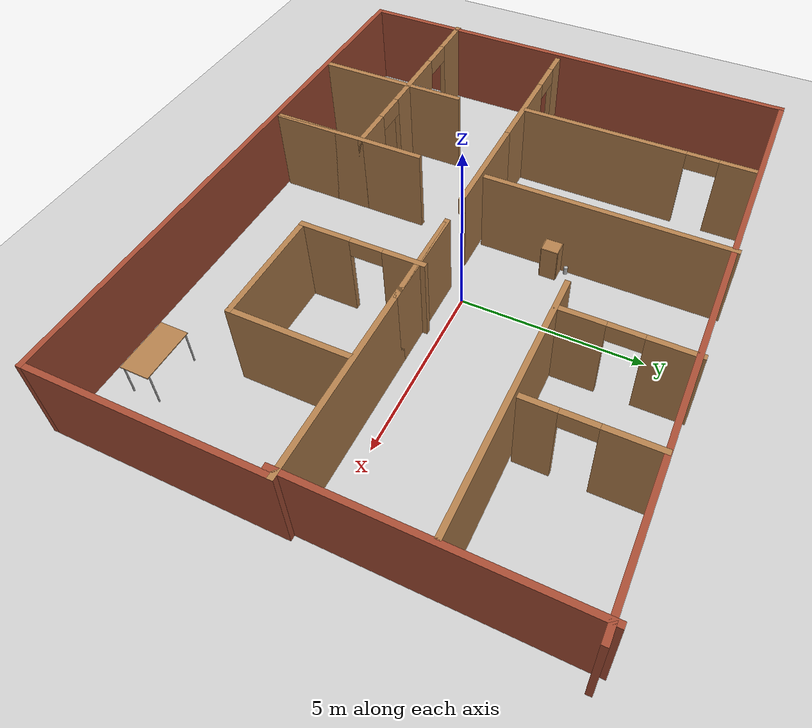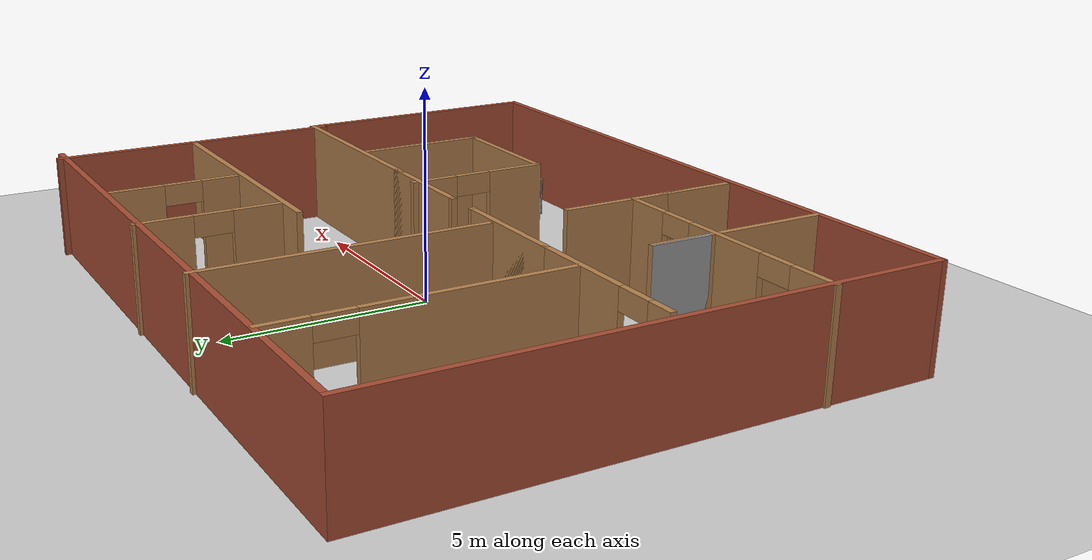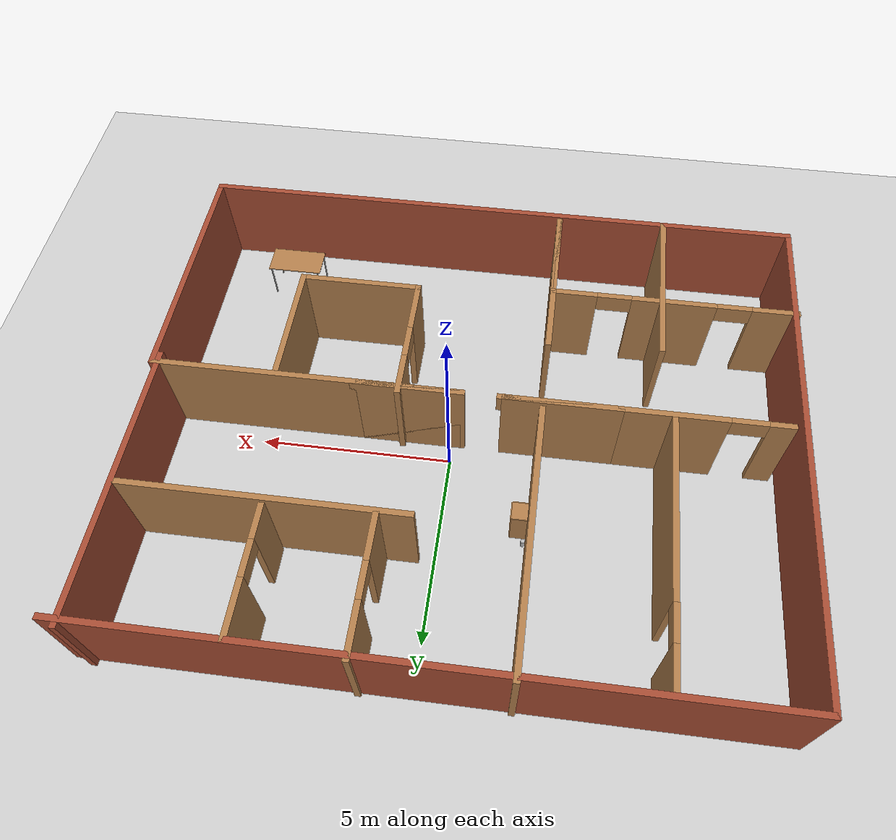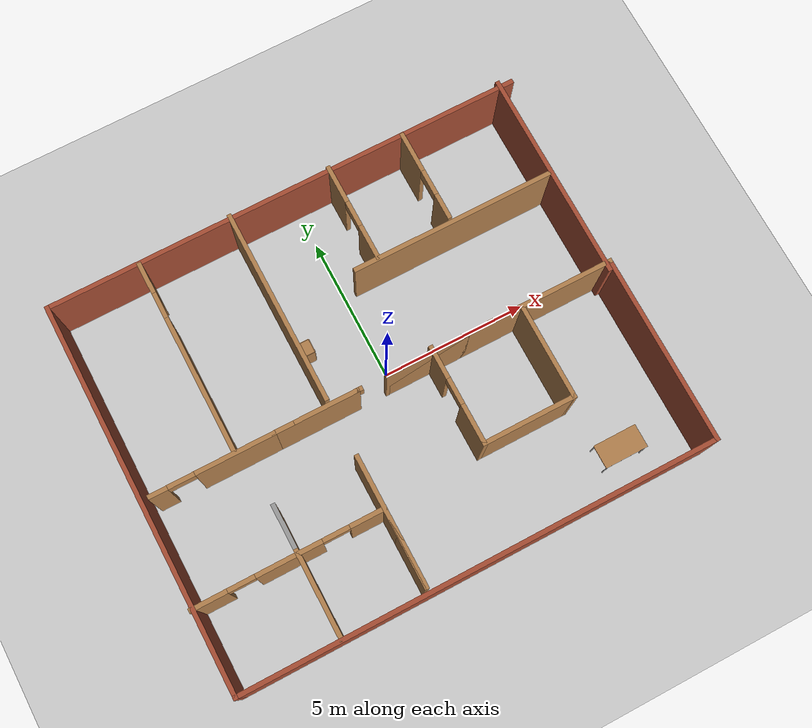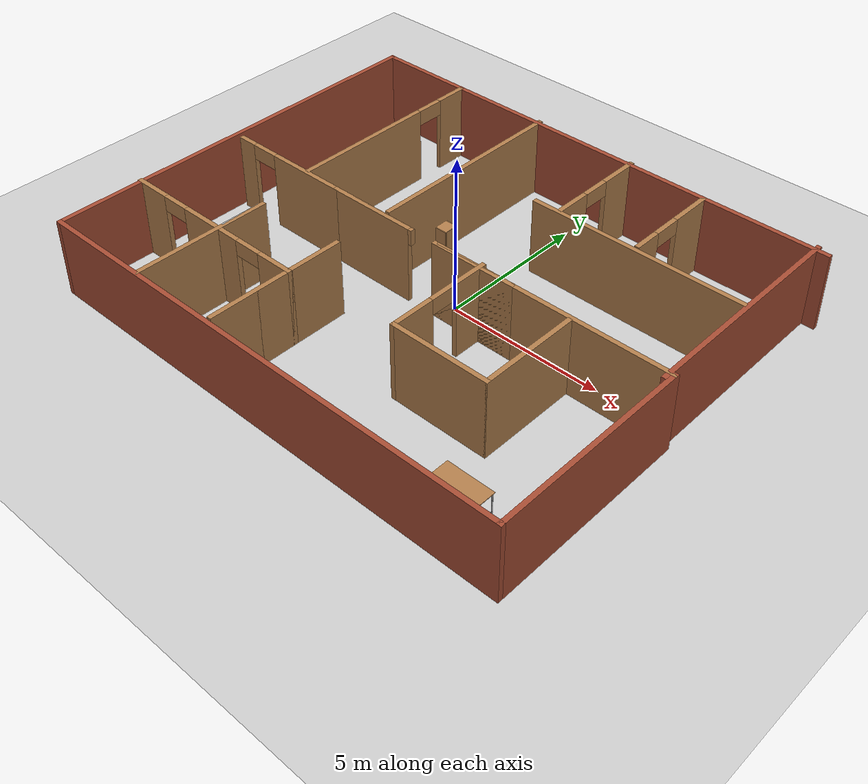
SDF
<sdf version="1.7">
 <world name="default">
  <model name="ground_plane">
   <static>1</static>
   <link name="link">
    <collision name="collision">
     <geometry><plane><normal>0 0 1</normal><size>100 100</size></plane></geometry>
     <surface>
      <contact><collide_bitmask>65535</collide_bitmask></contact>
      <friction><ode><mu>100</mu><mu2>50</mu2></ode></friction>
     </surface>
    </collision>
    <visual name="visual">
     <cast_shadows>0</cast_shadows>
     <geometry><plane><normal>0 0 1</normal><size>100 100</size></plane></geometry>
     <material>
      <script><uri>file://media/materials/scripts/gazebo.material</uri><name>Gazebo/Grey</name></script>
     </material>
    </visual>
   </link>
  </model>
  <model name="floor">
   <pose>-0.392936 -0.273888 0 0 -0 0</pose>
   <link name="Wall_0">
    <pose>-0.450005 -0.269423 0 0 -0 0</pose>
    <visual name="Wall_0_Visual_0">
     <pose>-1.88353 0 1.25 0 -0 0</pose>
     <geometry><box><size>2.98294 0.15 2.5</size></box></geometry>
     <material>
      <script><uri>file://media/materials/scripts/gazebo.material</uri><name>Gazebo/Wood</name></script>
      <ambient>1 1 1 1</ambient>
     </material>
     <meta><layer>0</layer></meta>
    </visual>
    <collision name="Wall_0_Collision_0">
     <geometry><box><size>2.98294 0.15 2.5</size></box></geometry>
     <pose>-1.88353 0 1.25 0 -0 0</pose>
    </collision>
    <visual name="Wall_0_Visual_1">
     <pose>-1.4996 0 1.25 0 -0 0</pose>
     <geometry><box><size>2.21508 0.15 2.5</size></box></geometry>
     <material>
      <script><uri>file://media/materials/scripts/gazebo.material</uri><name>Gazebo/Wood</name></script>
      <ambient>1 1 1 1</ambient>
     </material>
     <meta><layer>0</layer></meta>
    </visual>
    <collision name="Wall_0_Collision_1">
     <geometry><box><size>2.21508 0.15 2.5</size></box></geometry>
     <pose>-1.4996 0 1.25 0 -0 0</pose>
    </collision>
    <visual name="Wall_0_Visual_2">
     <pose>1.94147 0 1.25 0 -0 0</pose>
     <geometry><box><size>2.86706 0.15 2.5</size></box></geometry>
     <material>
      <script><uri>file://media/materials/scripts/gazebo.material</uri><name>Gazebo/Wood</name></script>
      <ambient>1 1 1 1</ambient>
     </material>
     <meta><layer>0</layer></meta>
    </visual>
    <collision name="Wall_0_Collision_2">
     <geometry><box><size>2.86706 0.15 2.5</size></box></geometry>
     <pose>1.94147 0 1.25 0 -0 0</pose>
    </collision>
    <visual name="Wall_0_Visual_3">
     <pose>2.00215 0 1.25 0 -0 0</pose>
     <geometry><box><size>2.7457 0.15 2.5</size></box></geometry>
     <material>
      <script><uri>file://media/materials/scripts/gazebo.material</uri><name>Gazebo/Wood</name></script>
      <ambient>1 1 1 1</ambient>
     </material>
     <meta><layer>0</layer></meta>
    </visual>
    <collision name="Wall_0_Collision_3">
     <geometry><box><size>2.7457 0.15 2.5</size></box></geometry>
     <pose>2.00215 0 1.25 0 -0 0</pose>
    </collision>
    <visual name="Wall_0_Visual_4">
     <pose>-0.33138 0 2.25 0 -0 0</pose>
     <geometry><box><size>0.121367 0.15 0.5</size></box></geometry>
     <material>
      <script><uri>file://media/materials/scripts/gazebo.material</uri><name>Gazebo/Wood</name></script>
      <ambient>1 1 1 1</ambient>
     </material>
     <meta><layer>0</layer></meta>
    </visual>
    <collision name="Wall_0_Collision_4">
     <geometry><box><size>0.121367 0.15 0.5</size></box></geometry>
     <pose>-0.33138 0 2.25 0 -0 0</pose>
    </collision>
    <visual name="Wall_0_Visual_5">
     <pose>-0.33138 0 2.25 0 -0 0</pose>
     <geometry><box><size>0.121367 0.15 0.5</size></box></geometry>
     <material>
      <script><uri>file://media/materials/scripts/gazebo.material</uri><name>Gazebo/Wood</name></script>
      <ambient>1 1 1 1</ambient>
     </material>
     <meta><layer>0</layer></meta>
    </visual>
    <collision name="Wall_0_Collision_5">
     <geometry><box><size>0.121367 0.15 0.5</size></box></geometry>
     <pose>-0.33138 0 2.25 0 -0 0</pose>
    </collision>
   </link>
   <link name="Wall_11">
    <collision name="Wall_11_Collision">
     <geometry><box><size>7.25 0.15 2.5</size></box></geometry>
     <pose>0 0 1.25 0 -0 0</pose>
    </collision>
    <visual name="Wall_11_Visual">
     <pose>0 0 1.25 0 -0 0</pose>
     <geometry><box><size>7.25 0.15 2.5</size></box></geometry>
     <material>
      <script><uri>file://media/materials/scripts/gazebo.material</uri><name>Gazebo/Bricks</name></script>
      <ambient>1 1 1 1</ambient>
     </material>
     <meta><layer>0</layer></meta>
    </visual>
    <pose>7.8083 3.06942 0 0 -0 -1.5708</pose>
   </link>
   <link name="Wall_13">
    <pose>-5.03671 3.13385 0 0 -0 -1.5708</pose>
    <visual name="Wall_13_Visual_0">
     <pose>-2.81756 0 1.25 0 -0 0</pose>
     <geometry><box><size>1.11488 0.15 2.5</size></box></geometry>
     <material>
      <script><uri>file://media/materials/scripts/gazebo.material</uri><name>Gazebo/Wood</name></script>
      <ambient>1 1 1 1</ambient>
     </material>
     <meta><layer>0</layer></meta>
    </visual>
    <collision name="Wall_13_Collision_0">
     <geometry><box><size>1.11488 0.15 2.5</size></box></geometry>
     <pose>-2.81756 0 1.25 0 -0 0</pose>
    </collision>
    <visual name="Wall_13_Visual_1">
     <pose>1.00744 0 1.25 0 -0 0</pose>
     <geometry><box><size>4.73512 0.15 2.5</size></box></geometry>
     <material>
      <script><uri>file://media/materials/scripts/gazebo.material</uri><name>Gazebo/Wood</name></script>
      <ambient>1 1 1 1</ambient>
     </material>
     <meta><layer>0</layer></meta>
    </visual>
    <collision name="Wall_13_Collision_1">
     <geometry><box><size>4.73512 0.15 2.5</size></box></geometry>
     <pose>1.00744 0 1.25 0 -0 0</pose>
    </collision>
    <visual name="Wall_13_Visual_2">
     <pose>-1.81012 0 2.25 0 -0 0</pose>
     <geometry><box><size>0.9 0.15 0.5</size></box></geometry>
     <material>
      <script><uri>file://media/materials/scripts/gazebo.material</uri><name>Gazebo/Wood</name></script>
      <ambient>1 1 1 1</ambient>
     </material>
     <meta><layer>0</layer></meta>
    </visual>
    <collision name="Wall_13_Collision_2">
     <geometry><box><size>0.9 0.15 0.5</size></box></geometry>
     <pose>-1.81012 0 2.25 0 -0 0</pose>
    </collision>
   </link>
   <link name="Wall_15">
    <collision name="Wall_15_Collision">
     <geometry><box><size>6.75 0.15 2.5</size></box></geometry>
     <pose>0 0 1.25 0 -0 0</pose>
    </collision>
    <visual name="Wall_15_Visual">
     <pose>0 0 1.25 0 -0 0</pose>
     <geometry><box><size>6.75 0.15 2.5</size></box></geometry>
     <material>
      <script><uri>file://media/materials/scripts/gazebo.material</uri><name>Gazebo/Wood</name></script>
      <ambient>1 1 1 1</ambient>
     </material>
     <meta><layer>0</layer></meta>
    </visual>
    <pose>-1.85532 3.25622 0 0 -0 -1.5708</pose>
   </link>
   <link name="Wall_17">
    <collision name="Wall_17_Collision">
     <geometry><box><size>7 0.15 2.5</size></box></geometry>
     <pose>0 0 1.25 0 -0 0</pose>
    </collision>
    <visual name="Wall_17_Visual">
     <pose>0 0 1.25 0 -0 0</pose>
     <geometry><box><size>7 0.15 2.5</size></box></geometry>
     <material>
      <script><uri>file://media/materials/scripts/gazebo.material</uri><name>Gazebo/Wood</name></script>
      <ambient>1 1 1 1</ambient>
     </material>
     <meta><layer>0</layer></meta>
    </visual>
    <pose>4.26383 3.1607 0 0 -0 3.14159</pose>
   </link>
   <link name="Wall_19">
    <pose>4.23213 4.91444 0 0 -0 -1.5708</pose>
    <visual name="Wall_19_Visual_0">
     <pose>-0.903532 0 1.25 0 -0 0</pose>
     <geometry><box><size>1.44294 0.15 2.5</size></box></geometry>
     <material>
      <script><uri>file://media/materials/scripts/gazebo.material</uri><name>Gazebo/Wood</name></script>
      <ambient>1 1 1 1</ambient>
     </material>
     <meta><layer>0</layer></meta>
    </visual>
    <collision name="Wall_19_Collision_0">
     <geometry><box><size>1.44294 0.15 2.5</size></box></geometry>
     <pose>-0.903532 0 1.25 0 -0 0</pose>
    </collision>
    <visual name="Wall_19_Visual_1">
     <pose>1.17147 0 1.25 0 -0 0</pose>
     <geometry><box><size>0.907064 0.15 2.5</size></box></geometry>
     <material>
      <script><uri>file://media/materials/scripts/gazebo.material</uri><name>Gazebo/Wood</name></script>
      <ambient>1 1 1 1</ambient>
     </material>
     <meta><layer>0</layer></meta>
    </visual>
    <collision name="Wall_19_Collision_1">
     <geometry><box><size>0.907064 0.15 2.5</size></box></geometry>
     <pose>1.17147 0 1.25 0 -0 0</pose>
    </collision>
    <visual name="Wall_19_Visual_2">
     <pose>0.267936 0 2.25 0 -0 0</pose>
     <geometry><box><size>0.9 0.15 0.5</size></box></geometry>
     <material>
      <script><uri>file://media/materials/scripts/gazebo.material</uri><name>Gazebo/Wood</name></script>
      <ambient>1 1 1 1</ambient>
     </material>
     <meta><layer>0</layer></meta>
    </visual>
    <collision name="Wall_19_Collision_2">
     <geometry><box><size>0.9 0.15 0.5</size></box></geometry>
     <pose>0.267936 0 2.25 0 -0 0</pose>
    </collision>
   </link>
   <link name="Wall_2">
    <pose>-5.8 -0.269423 0 0 -0 3.14159</pose>
    <visual name="Wall_2_Visual_0">
     <pose>-0.77525 0 1.25 0 -0 0</pose>
     <geometry><box><size>2.6995 0.15 2.5</size></box></geometry>
     <material>
      <script><uri>file://media/materials/scripts/gazebo.material</uri><name>Gazebo/Wood</name></script>
      <ambient>1 1 1 1</ambient>
     </material>
     <meta><layer>0</layer></meta>
    </visual>
    <collision name="Wall_2_Collision_0">
     <geometry><box><size>2.6995 0.15 2.5</size></box></geometry>
     <pose>-0.77525 0 1.25 0 -0 0</pose>
    </collision>
    <visual name="Wall_2_Visual_1">
     <pose>1.79975 0 1.25 0 -0 0</pose>
     <geometry><box><size>0.650499 0.15 2.5</size></box></geometry>
     <material>
      <script><uri>file://media/materials/scripts/gazebo.material</uri><name>Gazebo/Wood</name></script>
      <ambient>1 1 1 1</ambient>
     </material>
     <meta><layer>0</layer></meta>
    </visual>
    <collision name="Wall_2_Collision_1">
     <geometry><box><size>0.650499 0.15 2.5</size></box></geometry>
     <pose>1.79975 0 1.25 0 -0 0</pose>
    </collision>
    <visual name="Wall_2_Visual_2">
     <pose>1.0245 0 2.25 0 -0 0</pose>
     <geometry><box><size>0.9 0.15 0.5</size></box></geometry>
     <material>
      <script><uri>file://media/materials/scripts/gazebo.material</uri><name>Gazebo/Wood</name></script>
      <ambient>1 1 1 1</ambient>
     </material>
     <meta><layer>0</layer></meta>
    </visual>
    <collision name="Wall_2_Collision_2">
     <geometry><box><size>0.9 0.15 0.5</size></box></geometry>
     <pose>1.0245 0 2.25 0 -0 0</pose>
    </collision>
   </link>
   <link name="Wall_22">
    <pose>1.63196 4.88122 0 0 -0 -1.5708</pose>
    <visual name="Wall_22_Visual_0">
     <pose>-1.07442 0 1.25 0 -0 0</pose>
     <geometry><box><size>1.35116 0.15 2.5</size></box></geometry>
     <material>
      <script><uri>file://media/materials/scripts/gazebo.material</uri><name>Gazebo/Wood</name></script>
      <ambient>1 1 1 1</ambient>
     </material>
     <meta><layer>0</layer></meta>
    </visual>
    <collision name="Wall_22_Collision_0">
     <geometry><box><size>1.35116 0.15 2.5</size></box></geometry>
     <pose>-1.07442 0 1.25 0 -0 0</pose>
    </collision>
    <visual name="Wall_22_Visual_1">
     <pose>1.12558 0 1.25 0 -0 0</pose>
     <geometry><box><size>1.24883 0.15 2.5</size></box></geometry>
     <material>
      <script><uri>file://media/materials/scripts/gazebo.material</uri><name>Gazebo/Wood</name></script>
      <ambient>1 1 1 1</ambient>
     </material>
     <meta><layer>0</layer></meta>
    </visual>
    <collision name="Wall_22_Collision_1">
     <geometry><box><size>1.24883 0.15 2.5</size></box></geometry>
     <pose>1.12558 0 1.25 0 -0 0</pose>
    </collision>
    <visual name="Wall_22_Visual_2">
     <pose>0.051165 0 2.25 0 -0 0</pose>
     <geometry><box><size>0.9 0.15 0.5</size></box></geometry>
     <material>
      <script><uri>file://media/materials/scripts/gazebo.material</uri><name>Gazebo/Wood</name></script>
      <ambient>1 1 1 1</ambient>
     </material>
     <meta><layer>0</layer></meta>
    </visual>
    <collision name="Wall_22_Collision_2">
     <geometry><box><size>0.9 0.15 0.5</size></box></geometry>
     <pose>0.051165 0 2.25 0 -0 0</pose>
    </collision>
   </link>
   <link name="Wall_24">
    <pose>1.71162 -1.81284 0 0 -0 -1.5708</pose>
    <visual name="Wall_24_Visual_0">
     <pose>-1.16884 0 1.25 0 -0 0</pose>
     <geometry><box><size>1.16231 0.15 2.5</size></box></geometry>
     <material>
      <script><uri>file://media/materials/scripts/gazebo.material</uri><name>Gazebo/Wood</name></script>
      <ambient>1 1 1 1</ambient>
     </material>
     <meta><layer>0</layer></meta>
    </visual>
    <collision name="Wall_24_Collision_0">
     <geometry><box><size>1.16231 0.15 2.5</size></box></geometry>
     <pose>-1.16884 0 1.25 0 -0 0</pose>
    </collision>
    <visual name="Wall_24_Visual_1">
     <pose>1.03116 0 1.25 0 -0 0</pose>
     <geometry><box><size>1.43769 0.15 2.5</size></box></geometry>
     <material>
      <script><uri>file://media/materials/scripts/gazebo.material</uri><name>Gazebo/Wood</name></script>
      <ambient>1 1 1 1</ambient>
     </material>
     <meta><layer>0</layer></meta>
    </visual>
    <collision name="Wall_24_Collision_1">
     <geometry><box><size>1.43769 0.15 2.5</size></box></geometry>
     <pose>1.03116 0 1.25 0 -0 0</pose>
    </collision>
    <visual name="Wall_24_Visual_2">
     <pose>-0.137688 0 2.25 0 -0 0</pose>
     <geometry><box><size>0.9 0.15 0.5</size></box></geometry>
     <material>
      <script><uri>file://media/materials/scripts/gazebo.material</uri><name>Gazebo/Wood</name></script>
      <ambient>1 1 1 1</ambient>
     </material>
     <meta><layer>0</layer></meta>
    </visual>
    <collision name="Wall_24_Collision_2">
     <geometry><box><size>0.9 0.15 0.5</size></box></geometry>
     <pose>-0.137688 0 2.25 0 -0 0</pose>
    </collision>
   </link>
   <link name="Wall_25">
    <collision name="Wall_25_Collision">
     <geometry><box><size>3.25 0.15 2.5</size></box></geometry>
     <pose>0 0 1.25 0 -0 0</pose>
    </collision>
    <visual name="Wall_25_Visual">
     <pose>0 0 1.25 0 -0 0</pose>
     <geometry><box><size>3.25 0.15 2.5</size></box></geometry>
     <material>
      <script><uri>file://media/materials/scripts/gazebo.material</uri><name>Gazebo/Wood</name></script>
      <ambient>1 1 1 1</ambient>
     </material>
     <meta><layer>0</layer></meta>
    </visual>
    <pose>3.26162 -3.48784 0 0 -0 0</pose>
   </link>
   <link name="Wall_26">
    <collision name="Wall_26_Collision">
     <geometry><box><size>3.25 0.15 2.5</size></box></geometry>
     <pose>0 0 1.25 0 -0 0</pose>
    </collision>
    <visual name="Wall_26_Visual">
     <pose>0 0 1.25 0 -0 0</pose>
     <geometry><box><size>3.25 0.15 2.5</size></box></geometry>
     <material>
      <script><uri>file://media/materials/scripts/gazebo.material</uri><name>Gazebo/Wood</name></script>
      <ambient>1 1 1 1</ambient>
     </material>
     <meta><layer>0</layer></meta>
    </visual>
    <pose>4.81162 -1.93784 0 0 -0 1.5708</pose>
   </link>
   <link name="Wall_28">
    <pose>-5.02499 -3.8193 0 0 -0 0</pose>
    <visual name="Wall_28_Visual_0">
     <pose>-2.6268 0 1.25 0 -0 0</pose>
     <geometry><box><size>1.24641 0.15 2.5</size></box></geometry>
     <material>
      <script><uri>file://media/materials/scripts/gazebo.material</uri><name>Gazebo/Wood</name></script>
      <ambient>1 1 1 1</ambient>
     </material>
     <meta><layer>0</layer></meta>
    </visual>
    <collision name="Wall_28_Collision_0">
     <geometry><box><size>1.24641 0.15 2.5</size></box></geometry>
     <pose>-2.6268 0 1.25 0 -0 0</pose>
    </collision>
    <visual name="Wall_28_Visual_1">
     <pose>0.003946 0 1.25 0 -0 0</pose>
     <geometry><box><size>2.21508 0.15 2.5</size></box></geometry>
     <material>
      <script><uri>file://media/materials/scripts/gazebo.material</uri><name>Gazebo/Wood</name></script>
      <ambient>1 1 1 1</ambient>
     </material>
     <meta><layer>0</layer></meta>
    </visual>
    <collision name="Wall_28_Collision_1">
     <geometry><box><size>2.21508 0.15 2.5</size></box></geometry>
     <pose>0.003946 0 1.25 0 -0 0</pose>
    </collision>
    <visual name="Wall_28_Visual_2">
     <pose>2.63074 0 1.25 0 -0 0</pose>
     <geometry><box><size>1.23851 0.15 2.5</size></box></geometry>
     <material>
      <script><uri>file://media/materials/scripts/gazebo.material</uri><name>Gazebo/Wood</name></script>
      <ambient>1 1 1 1</ambient>
     </material>
     <meta><layer>0</layer></meta>
    </visual>
    <collision name="Wall_28_Collision_2">
     <geometry><box><size>1.23851 0.15 2.5</size></box></geometry>
     <pose>2.63074 0 1.25 0 -0 0</pose>
    </collision>
    <visual name="Wall_28_Visual_3">
     <pose>-1.55359 0 2.25 0 -0 0</pose>
     <geometry><box><size>0.9 0.15 0.5</size></box></geometry>
     <material>
      <script><uri>file://media/materials/scripts/gazebo.material</uri><name>Gazebo/Wood</name></script>
      <ambient>1 1 1 1</ambient>
     </material>
     <meta><layer>0</layer></meta>
    </visual>
    <collision name="Wall_28_Collision_3">
     <geometry><box><size>0.9 0.15 0.5</size></box></geometry>
     <pose>-1.55359 0 2.25 0 -0 0</pose>
    </collision>
    <visual name="Wall_28_Visual_4">
     <pose>1.56149 0 2.25 0 -0 0</pose>
     <geometry><box><size>0.9 0.15 0.5</size></box></geometry>
     <material>
      <script><uri>file://media/materials/scripts/gazebo.material</uri><name>Gazebo/Wood</name></script>
      <ambient>1 1 1 1</ambient>
     </material>
     <meta><layer>0</layer></meta>
    </visual>
    <collision name="Wall_28_Collision_4">
     <geometry><box><size>0.9 0.15 0.5</size></box></geometry>
     <pose>1.56149 0 2.25 0 -0 0</pose>
    </collision>
   </link>
   <link name="Wall_29">
    <collision name="Wall_29_Collision">
     <geometry><box><size>2.75 0.15 2.5</size></box></geometry>
     <pose>0 0 1.25 0 -0 0</pose>
    </collision>
    <visual name="Wall_29_Visual">
     <pose>0 0 1.25 0 -0 0</pose>
     <geometry><box><size>2.75 0.15 2.5</size></box></geometry>
     <material>
      <script><uri>file://media/materials/scripts/gazebo.material</uri><name>Gazebo/Wood</name></script>
      <ambient>1 1 1 1</ambient>
     </material>
     <meta><layer>0</layer></meta>
    </visual>
    <pose>-1.85 -5.1193 0 0 -0 -1.5708</pose>
   </link>
   <link name="Wall_30">
    <collision name="Wall_30_Collision">
     <geometry><box><size>4.5 0.15 2.5</size></box></geometry>
     <pose>0 0 1.25 0 -0 0</pose>
    </collision>
    <visual name="Wall_30_Visual">
     <pose>0 0 1.25 0 -0 0</pose>
     <geometry><box><size>4.5 0.15 2.5</size></box></geometry>
     <material>
      <script><uri>file://media/materials/scripts/gazebo.material</uri><name>Gazebo/Wood</name></script>
      <ambient>1 1 1 1</ambient>
     </material>
     <meta><layer>0</layer></meta>
    </visual>
    <pose>-1.85 -4.2443 0 0 -0 1.5708</pose>
   </link>
   <link name="Wall_32">
    <collision name="Wall_32_Collision">
     <geometry><box><size>1.5 0.15 2.5</size></box></geometry>
     <pose>0 0 1.25 0 -0 0</pose>
    </collision>
    <visual name="Wall_32_Visual">
     <pose>0 0 1.25 0 -0 0</pose>
     <geometry><box><size>1.5 0.15 2.5</size></box></geometry>
     <material>
      <script><uri>file://media/materials/scripts/gazebo.material</uri><name>Gazebo/Grey</name></script>
      <ambient>1 1 1 1</ambient>
     </material>
     <meta><layer>0</layer></meta>
    </visual>
    <pose>-4.72082 -2.90157 0 0 -0 1.5708</pose>
   </link>
   <link name="Wall_33">
    <collision name="Wall_33_Collision">
     <geometry><box><size>4.5 0.15 2.5</size></box></geometry>
     <pose>0 0 1.25 0 -0 0</pose>
    </collision>
    <visual name="Wall_33_Visual">
     <pose>0 0 1.25 0 -0 0</pose>
     <geometry><box><size>4.5 0.15 2.5</size></box></geometry>
     <material>
      <script><uri>file://media/materials/scripts/gazebo.material</uri><name>Gazebo/Wood</name></script>
      <ambient>1 1 1 1</ambient>
     </material>
     <meta><layer>0</layer></meta>
    </visual>
    <pose>-4.72082 -4.40156 0 0 -0 -1.5708</pose>
   </link>
   <link name="Wall_4">
    <collision name="Wall_4_Collision">
     <geometry><box><size>5.25 0.15 2.5</size></box></geometry>
     <pose>0 0 1.25 0 -0 0</pose>
    </collision>
    <visual name="Wall_4_Visual">
     <pose>0 0 1.25 0 -0 0</pose>
     <geometry><box><size>5.25 0.15 2.5</size></box></geometry>
     <material>
      <script><uri>file://media/materials/scripts/gazebo.material</uri><name>Gazebo/Wood</name></script>
      <ambient>1 1 1 1</ambient>
     </material>
     <meta><layer>0</layer></meta>
    </visual>
    <pose>5.39999 -0.269423 0 0 -0 0</pose>
   </link>
   <link name="Wall_6">
    <collision name="Wall_6_Collision">
     <geometry><box><size>6.5 0.15 2.5</size></box></geometry>
     <pose>0 0 1.25 0 -0 0</pose>
    </collision>
    <visual name="Wall_6_Visual">
     <pose>0 0 1.25 0 -0 0</pose>
     <geometry><box><size>6.5 0.15 2.5</size></box></geometry>
     <material>
      <script><uri>file://media/materials/scripts/gazebo.material</uri><name>Gazebo/Bricks</name></script>
      <ambient>1 1 1 1</ambient>
     </material>
     <meta><layer>0</layer></meta>
    </visual>
    <pose>7.95 -3.44442 0 0 -0 -1.5708</pose>
   </link>
   <link name="Wall_7">
    <collision name="Wall_7_Collision">
     <geometry><box><size>16.25 0.15 2.5</size></box></geometry>
     <pose>0 0 1.25 0 -0 0</pose>
    </collision>
    <visual name="Wall_7_Visual">
     <pose>0 0 1.25 0 -0 0</pose>
     <geometry><box><size>16.25 0.15 2.5</size></box></geometry>
     <material>
      <script><uri>file://media/materials/scripts/gazebo.material</uri><name>Gazebo/Bricks</name></script>
      <ambient>1 1 1 1</ambient>
     </material>
     <meta><layer>0</layer></meta>
    </visual>
    <pose>-0.100005 -6.61942 0 0 -0 3.14159</pose>
   </link>
   <link name="Wall_8">
    <collision name="Wall_8_Collision">
     <geometry><box><size>13.25 0.15 2.5</size></box></geometry>
     <pose>0 0 1.25 0 -0 0</pose>
    </collision>
    <visual name="Wall_8_Visual">
     <pose>0 0 1.25 0 -0 0</pose>
     <geometry><box><size>13.25 0.15 2.5</size></box></geometry>
     <material>
      <script><uri>file://media/materials/scripts/gazebo.material</uri><name>Gazebo/Bricks</name></script>
      <ambient>1 1 1 1</ambient>
     </material>
     <meta><layer>0</layer></meta>
    </visual>
    <pose>-8.15001 -0.069423 0 0 -0 1.5708</pose>
   </link>
   <link name="Wall_9">
    <collision name="Wall_9_Collision">
     <geometry><box><size>16.5 0.15 2.5</size></box></geometry>
     <pose>0 0 1.25 0 -0 0</pose>
    </collision>
    <visual name="Wall_9_Visual">
     <pose>0 0 1.25 0 -0 0</pose>
     <geometry><box><size>16.5 0.15 2.5</size></box></geometry>
     <material>
      <script><uri>file://media/materials/scripts/gazebo.material</uri><name>Gazebo/Bricks</name></script>
      <ambient>1 1 1 1</ambient>
     </material>
     <meta><layer>0</layer></meta>
    </visual>
    <pose>0.024995 6.48058 0 0 -0 0</pose>
   </link>
   <static>1</static>
  </model>
  <model name="cabinet">
   <static>1</static>
   <link name="cabinet_bottom_plate">
    <inertial>
     <pose>0 0 -1 0 -0 0</pose>
     <inertia><ixx>2.05</ixx><ixy>0</ixy><ixz>0</ixz><iyy>2.05</iyy><iyz>0</iyz><izz>2.05</izz></inertia>
     <mass>25</mass>
    </inertial>
    <collision name="cabinet_bottom_plate_geom">
     <pose>0 0 0.01 0 -0 0</pose>
     <geometry><box><size>0.45 0.45 0.02</size></box></geometry>
    </collision>
    <visual name="cabinet_bottom_plate_geom_visual">
     <pose>0 0 0.01 0 -0 0</pose>
     <geometry><box><size>0.45 0.45 0.02</size></box></geometry>
     <material>
      <script><uri>file://media/materials/scripts/gazebo.material</uri><name>Gazebo/Wood</name></script>
     </material>
    </visual>
    <collision name="cabinet_bottom_plate_geom_cabinet_back_plate">
     <pose>0.235 0 0.51 0 -0 0</pose>
     <geometry><box><size>0.02 0.45 1.02</size></box></geometry>
    </collision>
    <visual name="cabinet_bottom_plate_geom_cabinet_back_plate_visual">
     <pose>0.235 0 0.51 0 -0 0</pose>
     <geometry><box><size>0.02 0.45 1.02</size></box></geometry>
     <material>
      <script><uri>file://media/materials/scripts/gazebo.material</uri><name>Gazebo/Wood</name></script>
     </material>
    </visual>
    <collision name="cabinet_bottom_plate_geom_cabinet_left_plate">
     <pose>0 0.235 0.51 0 -0 0</pose>
     <geometry><box><size>0.45 0.02 1.02</size></box></geometry>
    </collision>
    <visual name="cabinet_bottom_plate_geom_cabinet_left_plate_visual">
     <pose>0 0.235 0.51 0 -0 0</pose>
     <geometry><box><size>0.45 0.02 1.02</size></box></geometry>
     <material>
      <script><uri>file://media/materials/scripts/gazebo.material</uri><name>Gazebo/Wood</name></script>
     </material>
    </visual>
    <collision name="cabinet_bottom_plate_geom_cabinet_middle_plate">
     <pose>0 0 0.51 0 -0 0</pose>
     <geometry><box><size>0.45 0.45 0.02</size></box></geometry>
    </collision>
    <visual name="cabinet_bottom_plate_geom_cabinet_middle_plate_visual">
     <pose>0 0 0.51 0 -0 0</pose>
     <geometry><box><size>0.45 0.45 0.02</size></box></geometry>
     <material>
      <script><uri>file://media/materials/scripts/gazebo.material</uri><name>Gazebo/Wood</name></script>
     </material>
    </visual>
    <collision name="cabinet_bottom_plate_geom_cabinet_right_plate">
     <pose>0 -0.235 0.51 0 -0 0</pose>
     <geometry><box><size>0.45 0.02 1.02</size></box></geometry>
    </collision>
    <visual name="cabinet_bottom_plate_geom_cabinet_right_plate_visual">
     <pose>0 -0.235 0.51 0 -0 0</pose>
     <geometry><box><size>0.45 0.02 1.02</size></box></geometry>
     <material>
      <script><uri>file://media/materials/scripts/gazebo.material</uri><name>Gazebo/Wood</name></script>
     </material>
    </visual>
    <collision name="cabinet_bottom_plate_geom_cabinet_top_plate">
     <pose>0 0 1.01 0 -0 0</pose>
     <geometry><box><size>0.45 0.45 0.02</size></box></geometry>
    </collision>
    <visual name="cabinet_bottom_plate_geom_cabinet_top_plate_visual">
     <pose>0 0 1.01 0 -0 0</pose>
     <geometry><box><size>0.45 0.45 0.02</size></box></geometry>
     <material>
      <script><uri>file://media/materials/scripts/gazebo.material</uri><name>Gazebo/Wood</name></script>
     </material>
    </visual>
   </link>
   <pose>-1.99652 1.7442 0 0 -0 0</pose>
  </model>
  <model name="beer">
   <link name="link">
    <pose>0 0 0.115 0 -0 0</pose>
    <inertial>
     <mass>0.39</mass>
     <inertia><ixx>0.00058</ixx><ixy>0</ixy><ixz>0</ixz><iyy>0.00058</iyy><iyz>0</iyz><izz>0.00019</izz></inertia>
    </inertial>
    <collision name="collision">
     <geometry><cylinder><radius>0.055</radius><length>0.23</length></cylinder></geometry>
    </collision>
    <visual name="visual">
     <geometry><cylinder><radius>0.055</radius><length>0.23</length></cylinder></geometry>
     <material>
      <script>
       <uri>model://beer/materials/scripts</uri>
       <uri>model://beer/materials/textures</uri>
       <name>Beer/Diffuse</name>
      </script>
     </material>
    </visual>
   </link>
   <pose>-2.11825 2.15366 -7e-06 -0 -0 -1.1e-05</pose>
  </model>
  <model name="table">
   <static>1</static>
   <link name="link">
    <collision name="surface">
     <pose>0 0 1 0 -0 0</pose>
     <geometry><box><size>1.5 0.8 0.03</size></box></geometry>
     <surface><friction><ode><mu>0.6</mu><mu2>0.6</mu2></ode></friction></surface>
    </collision>
    <visual name="visual1">
     <pose>0 0 1 0 -0 0</pose>
     <geometry><box><size>1.5 0.8 0.03</size></box></geometry>
     <material>
      <script><uri>file://media/materials/scripts/gazebo.material</uri><name>Gazebo/Wood</name></script>
     </material>
    </visual>
    <collision name="front_left_leg">
     <pose>0.68 0.38 0.5 0 -0 0</pose>
     <geometry><cylinder><radius>0.02</radius><length>1</length></cylinder></geometry>
    </collision>
    <visual name="front_left_leg">
     <pose>0.68 0.38 0.5 0 -0 0</pose>
     <geometry><cylinder><radius>0.02</radius><length>1</length></cylinder></geometry>
     <material>
      <script><uri>file://media/materials/scripts/gazebo.material</uri><name>Gazebo/Grey</name></script>
     </material>
    </visual>
    <collision name="front_right_leg">
     <pose>0.68 -0.38 0.5 0 -0 0</pose>
     <geometry><cylinder><radius>0.02</radius><length>1</length></cylinder></geometry>
    </collision>
    <visual name="front_right_leg">
     <pose>0.68 -0.38 0.5 0 -0 0</pose>
     <geometry><cylinder><radius>0.02</radius><length>1</length></cylinder></geometry>
     <material>
      <script><uri>file://media/materials/scripts/gazebo.material</uri><name>Gazebo/Grey</name></script>
     </material>
    </visual>
    <collision name="back_right_leg">
     <pose>-0.68 -0.38 0.5 0 -0 0</pose>
     <geometry><cylinder><radius>0.02</radius><length>1</length></cylinder></geometry>
    </collision>
    <visual name="back_right_leg">
     <pose>-0.68 -0.38 0.5 0 -0 0</pose>
     <geometry><cylinder><radius>0.02</radius><length>1</length></cylinder></geometry>
     <material>
      <script><uri>file://media/materials/scripts/gazebo.material</uri><name>Gazebo/Grey</name></script>
     </material>
    </visual>
    <collision name="back_left_leg">
     <pose>-0.68 0.38 0.5 0 -0 0</pose>
     <geometry><cylinder><radius>0.02</radius><length>1</length></cylinder></geometry>
    </collision>
    <visual name="back_left_leg">
     <pose>-0.68 0.38 0.5 0 -0 0</pose>
     <geometry><cylinder><radius>0.02</radius><length>1</length></cylinder></geometry>
     <material>
      <script><uri>file://media/materials/scripts/gazebo.material</uri><name>Gazebo/Grey</name></script>
     </material>
    </visual>
   </link>
   <pose>5.26967 -5.63943 0 0 -0 0</pose>
  </model>
 </world>
</sdf>
